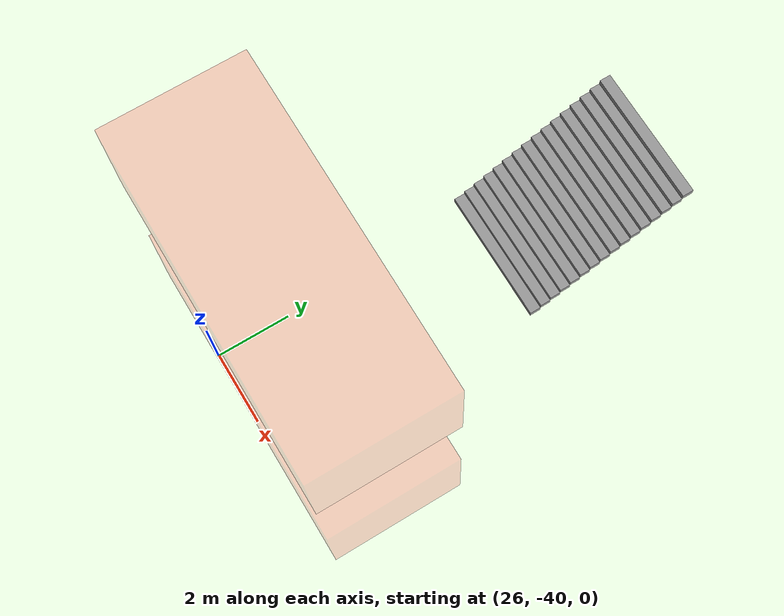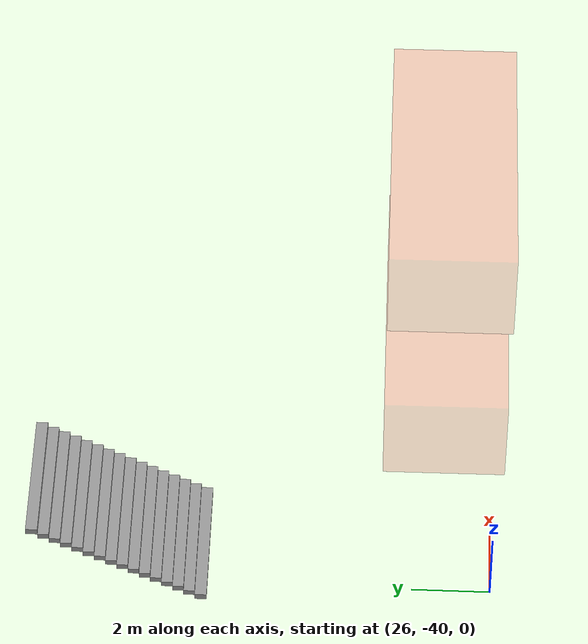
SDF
<sdf version="1.7">
 <world name="world">
  <include><uri>model://sun</uri></include>
  <include>
   <uri>file:///home/home/ros2_ws/src/RCI_quadruped_robot_navigation/rl_sar/models/restricted_zone</uri>
   <name>L2_restricted_zone</name>
   <pose>29.18 -38.66 6.25 0 0 0</pose>
  </include>
  <include>
   <uri>file:///home/home/ros2_ws/src/RCI_quadruped_robot_navigation/rl_sar/models/restricted_zone</uri>
   <name>L3_restricted_zone</name>
   <pose>29.18 -38.66 11.25 0 0 0</pose>
  </include>
  <model name="stairs_new">
   <pose>27.35 -34.334000 0.065 0 -0 1.570796</pose>
   <link name="Stairs">
    <pose>3 1e-06 0 0 -0 0</pose>
    <inertial>
     <mass>1</mass>
     <inertia><ixx>1</ixx><ixy>0</ixy><ixz>0</ixz><iyy>1</iyy><iyz>0</iyz><izz>1</izz></inertia>
    </inertial>
    <visual name="Stairs_Visual_7">
     <pose>0.70875 0 1.09375 0 -0 1.5708</pose>
     <geometry><box><size>3.66 0.28125 0.15625</size></box></geometry>
     <material>
      <script><uri>file://media/materials/scripts/gazebo.material</uri><name>Gazebo/Grey</name></script>
      <ambient>1 1 1 1</ambient>
      <shader type="pixel"><normal_map>__default__</normal_map></shader>
      <diffuse>0.7 0.7 0.7 1</diffuse>
      <specular>0.01 0.01 0.01 1</specular>
      <emissive>0 0 0 1</emissive>
     </material>
     <meta><layer>0</layer></meta>
    </visual>
    <visual name="Stairs_Visual_10">
     <pose>1.5525 0 1.5625 0 -0 1.5708</pose>
     <geometry><box><size>3.66 0.28125 0.15625</size></box></geometry>
     <material>
      <script><uri>file://media/materials/scripts/gazebo.material</uri><name>Gazebo/Grey</name></script>
      <ambient>1 1 1 1</ambient>
      <shader type="pixel"><normal_map>__default__</normal_map></shader>
      <diffuse>0.7 0.7 0.7 1</diffuse>
      <specular>0.01 0.01 0.01 1</specular>
      <emissive>0 0 0 1</emissive>
     </material>
     <meta><layer>0</layer></meta>
    </visual>
    <visual name="Stairs_Visual_11">
     <pose>1.83375 0 1.71875 0 -0 1.5708</pose>
     <geometry><box><size>3.66 0.28125 0.15625</size></box></geometry>
     <material>
      <script><uri>file://media/materials/scripts/gazebo.material</uri><name>Gazebo/Grey</name></script>
      <ambient>1 1 1 1</ambient>
      <shader type="pixel"><normal_map>__default__</normal_map></shader>
      <diffuse>0.7 0.7 0.7 1</diffuse>
      <specular>0.01 0.01 0.01 1</specular>
      <emissive>0 0 0 1</emissive>
     </material>
     <meta><layer>0</layer></meta>
    </visual>
    <visual name="Stairs_Visual_1">
     <pose>-0.97875 0 0.15625 0 -0 1.5708</pose>
     <geometry><box><size>3.66 0.28125 0.15625</size></box></geometry>
     <material>
      <script><uri>file://media/materials/scripts/gazebo.material</uri><name>Gazebo/Grey</name></script>
      <ambient>1 1 1 1</ambient>
      <shader type="pixel"><normal_map>__default__</normal_map></shader>
      <diffuse>0.7 0.7 0.7 1</diffuse>
      <specular>0.01 0.01 0.01 1</specular>
      <emissive>0 0 0 1</emissive>
     </material>
     <meta><layer>0</layer></meta>
    </visual>
    <visual name="Stairs_Visual_8">
     <pose>0.99 0 1.25 0 -0 1.5708</pose>
     <geometry><box><size>3.66 0.28125 0.15625</size></box></geometry>
     <material>
      <script><uri>file://media/materials/scripts/gazebo.material</uri><name>Gazebo/Grey</name></script>
      <ambient>1 1 1 1</ambient>
      <shader type="pixel"><normal_map>__default__</normal_map></shader>
      <diffuse>0.7 0.7 0.7 1</diffuse>
      <specular>0.01 0.01 0.01 1</specular>
      <emissive>0 0 0 1</emissive>
     </material>
     <meta><layer>0</layer></meta>
    </visual>
    <visual name="Stairs_Visual_2">
     <pose>-0.6975 0 0.3125 0 -0 1.5708</pose>
     <geometry><box><size>3.66 0.28125 0.15625</size></box></geometry>
     <material>
      <script><uri>file://media/materials/scripts/gazebo.material</uri><name>Gazebo/Grey</name></script>
      <ambient>1 1 1 1</ambient>
      <shader type="pixel"><normal_map>__default__</normal_map></shader>
      <diffuse>0.7 0.7 0.7 1</diffuse>
      <specular>0.01 0.01 0.01 1</specular>
      <emissive>0 0 0 1</emissive>
     </material>
     <meta><layer>0</layer></meta>
    </visual>
    <visual name="Stairs_Visual_0">
     <pose>-1.27 0 0.005 0 -0 1.5708</pose>
     <geometry><box><size>3.66 0.3 0.17</size></box></geometry>
     <material>
      <script><uri>file://media/materials/scripts/gazebo.material</uri><name>Gazebo/Grey</name></script>
      <ambient>1 1 1 1</ambient>
      <shader type="pixel"><normal_map>__default__</normal_map></shader>
      <diffuse>0.7 0.7 0.7 1</diffuse>
      <specular>0.01 0.01 0.01 1</specular>
      <emissive>0 0 0 1</emissive>
     </material>
     <meta><layer>0</layer></meta>
    </visual>
    <visual name="Stairs_Visual_12">
     <pose>2.115 0 1.875 0 -0 1.5708</pose>
     <geometry><box><size>3.66 0.28125 0.15625</size></box></geometry>
     <material>
      <script><uri>file://media/materials/scripts/gazebo.material</uri><name>Gazebo/Grey</name></script>
      <ambient>1 1 1 1</ambient>
      <shader type="pixel"><normal_map>__default__</normal_map></shader>
      <diffuse>0.7 0.7 0.7 1</diffuse>
      <specular>0.01 0.01 0.01 1</specular>
      <emissive>0 0 0 1</emissive>
     </material>
     <meta><layer>0</layer></meta>
    </visual>
    <visual name="Stairs_Visual_9">
     <pose>1.27125 0 1.40625 0 -0 1.5708</pose>
     <geometry><box><size>3.66 0.28125 0.15625</size></box></geometry>
     <material>
      <script><uri>file://media/materials/scripts/gazebo.material</uri><name>Gazebo/Grey</name></script>
      <ambient>1 1 1 1</ambient>
      <shader type="pixel"><normal_map>__default__</normal_map></shader>
      <diffuse>0.7 0.7 0.7 1</diffuse>
      <specular>0.01 0.01 0.01 1</specular>
      <emissive>0 0 0 1</emissive>
     </material>
     <meta><layer>0</layer></meta>
    </visual>
    <visual name="Stairs_Visual_13">
     <pose>2.39625 0 2.03125 0 -0 1.5708</pose>
     <geometry><box><size>3.66 0.28125 0.15625</size></box></geometry>
     <material>
      <script><uri>file://media/materials/scripts/gazebo.material</uri><name>Gazebo/Grey</name></script>
      <ambient>1 1 1 1</ambient>
      <shader type="pixel"><normal_map>__default__</normal_map></shader>
      <diffuse>0.7 0.7 0.7 1</diffuse>
      <specular>0.01 0.01 0.01 1</specular>
      <emissive>0 0 0 1</emissive>
     </material>
     <meta><layer>0</layer></meta>
    </visual>
    <visual name="Stairs_Visual_4">
     <pose>-0.135 0 0.625 0 -0 1.5708</pose>
     <geometry><box><size>3.66 0.28125 0.15625</size></box></geometry>
     <material>
      <script><uri>file://media/materials/scripts/gazebo.material</uri><name>Gazebo/Grey</name></script>
      <ambient>1 1 1 1</ambient>
      <shader type="pixel"><normal_map>__default__</normal_map></shader>
      <diffuse>0.7 0.7 0.7 1</diffuse>
      <specular>0.01 0.01 0.01 1</specular>
      <emissive>0 0 0 1</emissive>
     </material>
     <meta><layer>0</layer></meta>
    </visual>
    <visual name="Stairs_Visual_5">
     <pose>0.14625 0 0.78125 0 -0 1.5708</pose>
     <geometry><box><size>3.66 0.28125 0.15625</size></box></geometry>
     <material>
      <script><uri>file://media/materials/scripts/gazebo.material</uri><name>Gazebo/Grey</name></script>
      <ambient>1 1 1 1</ambient>
      <shader type="pixel"><normal_map>__default__</normal_map></shader>
      <diffuse>0.7 0.7 0.7 1</diffuse>
      <specular>0.01 0.01 0.01 1</specular>
      <emissive>0 0 0 1</emissive>
     </material>
     <meta><layer>0</layer></meta>
    </visual>
    <visual name="Stairs_Visual_15">
     <pose>2.969 0 2.35 0 -0 1.5708</pose>
     <geometry><box><size>3.66 0.3 0.17</size></box></geometry>
     <material>
      <script><uri>file://media/materials/scripts/gazebo.material</uri><name>Gazebo/Grey</name></script>
      <ambient>1 1 1 1</ambient>
      <shader type="pixel"><normal_map>__default__</normal_map></shader>
      <diffuse>0.7 0.7 0.7 1</diffuse>
      <specular>0.01 0.01 0.01 1</specular>
      <emissive>0 0 0 1</emissive>
     </material>
     <meta><layer>0</layer></meta>
    </visual>
    <visual name="Stairs_Visual_3">
     <pose>-0.41625 0 0.46875 0 -0 1.5708</pose>
     <geometry><box><size>3.66 0.28125 0.15625</size></box></geometry>
     <material>
      <script><uri>file://media/materials/scripts/gazebo.material</uri><name>Gazebo/Grey</name></script>
      <ambient>1 1 1 1</ambient>
      <shader type="pixel"><normal_map>__default__</normal_map></shader>
      <diffuse>0.7 0.7 0.7 1</diffuse>
      <specular>0.01 0.01 0.01 1</specular>
      <emissive>0 0 0 1</emissive>
     </material>
     <meta><layer>0</layer></meta>
    </visual>
    <visual name="Stairs_Visual_6">
     <pose>0.4275 0 0.9375 0 -0 1.5708</pose>
     <geometry><box><size>3.66 0.28125 0.15625</size></box></geometry>
     <material>
      <script><uri>file://media/materials/scripts/gazebo.material</uri><name>Gazebo/Grey</name></script>
      <ambient>1 1 1 1</ambient>
      <shader type="pixel"><normal_map>__default__</normal_map></shader>
      <diffuse>0.7 0.7 0.7 1</diffuse>
      <specular>0.01 0.01 0.01 1</specular>
      <emissive>0 0 0 1</emissive>
     </material>
     <meta><layer>0</layer></meta>
    </visual>
    <visual name="Stairs_Visual_14">
     <pose>2.6775 0 2.1875 0 -0 1.5708</pose>
     <geometry><box><size>3.66 0.28125 0.15625</size></box></geometry>
     <material>
      <script><uri>file://media/materials/scripts/gazebo.material</uri><name>Gazebo/Grey</name></script>
      <ambient>1 1 1 1</ambient>
      <shader type="pixel"><normal_map>__default__</normal_map></shader>
      <diffuse>0.7 0.7 0.7 1</diffuse>
      <specular>0.01 0.01 0.01 1</specular>
      <emissive>0 0 0 1</emissive>
     </material>
     <meta><layer>0</layer></meta>
    </visual>
    <collision name="Stairs_Collision_9">
     <pose>1.27125 0 1.40625 0 -0 1.5708</pose>
     <geometry><box><size>3.66 0.28125 0.15625</size></box></geometry>
     <surface>
      <friction>
       <ode><mu>1</mu><mu2>1</mu2><fdir1>0 0 0</fdir1><slip1>0</slip1><slip2>0</slip2></ode>
       <torsional>
        <coefficient>1</coefficient>
        <patch_radius>0</patch_radius>
        <surface_radius>0</surface_radius>
        <use_patch_radius>1</use_patch_radius>
        <ode><slip>0</slip></ode>
       </torsional>
      </friction>
      <bounce><restitution_coefficient>0</restitution_coefficient><threshold>1e+06</threshold></bounce>
      <contact>
       <collide_without_contact>0</collide_without_contact>
       <collide_without_contact_bitmask>1</collide_without_contact_bitmask>
       <collide_bitmask>1</collide_bitmask>
       <ode>
        <soft_cfm>0</soft_cfm>
        <soft_erp>0.2</soft_erp>
        <kp>1e+13</kp>
        <kd>1</kd>
        <max_vel>0.01</max_vel>
        <min_depth>0</min_depth>
       </ode>
       <bullet>
        <split_impulse>1</split_impulse>
        <split_impulse_penetration_threshold>-0.01</split_impulse_penetration_threshold>
        <soft_cfm>0</soft_cfm>
        <soft_erp>0.2</soft_erp>
        <kp>1e+13</kp>
        <kd>1</kd>
       </bullet>
      </contact>
     </surface>
    </collision>
    <collision name="Stairs_Collision_1">
     <pose>-0.97875 0 0.15625 0 -0 1.5708</pose>
     <geometry><box><size>3.66 0.3 0.1566</size></box></geometry>
     <surface>
      <friction>
       <ode><mu>1</mu><mu2>1</mu2><fdir1>0 0 0</fdir1><slip1>0</slip1><slip2>0</slip2></ode>
       <torsional>
        <coefficient>1</coefficient>
        <patch_radius>0</patch_radius>
        <surface_radius>0</surface_radius>
        <use_patch_radius>1</use_patch_radius>
        <ode><slip>0</slip></ode>
       </torsional>
      </friction>
      <bounce><restitution_coefficient>0</restitution_coefficient><threshold>1e+06</threshold></bounce>
      <contact>
       <collide_without_contact>0</collide_without_contact>
       <collide_without_contact_bitmask>1</collide_without_contact_bitmask>
       <collide_bitmask>1</collide_bitmask>
       <ode>
        <soft_cfm>0</soft_cfm>
        <soft_erp>0.2</soft_erp>
        <kp>1e+13</kp>
        <kd>1</kd>
        <max_vel>0.01</max_vel>
        <min_depth>0</min_depth>
       </ode>
       <bullet>
        <split_impulse>1</split_impulse>
        <split_impulse_penetration_threshold>-0.01</split_impulse_penetration_threshold>
        <soft_cfm>0</soft_cfm>
        <soft_erp>0.2</soft_erp>
        <kp>1e+13</kp>
        <kd>1</kd>
       </bullet>
      </contact>
     </surface>
    </collision>
    <collision name="Stairs_Collision_6">
     <pose>0.4275 0 0.9375 0 -0 1.5708</pose>
     <geometry><box><size>3.66 0.28125 0.15625</size></box></geometry>
     <surface>
      <friction>
       <ode><mu>1</mu><mu2>1</mu2><fdir1>0 0 0</fdir1><slip1>0</slip1><slip2>0</slip2></ode>
       <torsional>
        <coefficient>1</coefficient>
        <patch_radius>0</patch_radius>
        <surface_radius>0</surface_radius>
        <use_patch_radius>1</use_patch_radius>
        <ode><slip>0</slip></ode>
       </torsional>
      </friction>
      <bounce><restitution_coefficient>0</restitution_coefficient><threshold>1e+06</threshold></bounce>
      <contact>
       <collide_without_contact>0</collide_without_contact>
       <collide_without_contact_bitmask>1</collide_without_contact_bitmask>
       <collide_bitmask>1</collide_bitmask>
       <ode>
        <soft_cfm>0</soft_cfm>
        <soft_erp>0.2</soft_erp>
        <kp>1e+13</kp>
        <kd>1</kd>
        <max_vel>0.01</max_vel>
        <min_depth>0</min_depth>
       </ode>
       <bullet>
        <split_impulse>1</split_impulse>
        <split_impulse_penetration_threshold>-0.01</split_impulse_penetration_threshold>
        <soft_cfm>0</soft_cfm>
        <soft_erp>0.2</soft_erp>
        <kp>1e+13</kp>
        <kd>1</kd>
       </bullet>
      </contact>
     </surface>
    </collision>
    <collision name="Stairs_Collision_7">
     <pose>0.70875 0 1.09375 0 -0 1.5708</pose>
     <geometry><box><size>3.66 0.28125 0.15625</size></box></geometry>
     <surface>
      <friction>
       <ode><mu>1</mu><mu2>1</mu2><fdir1>0 0 0</fdir1><slip1>0</slip1><slip2>0</slip2></ode>
       <torsional>
        <coefficient>1</coefficient>
        <patch_radius>0</patch_radius>
        <surface_radius>0</surface_radius>
        <use_patch_radius>1</use_patch_radius>
        <ode><slip>0</slip></ode>
       </torsional>
      </friction>
      <bounce><restitution_coefficient>0</restitution_coefficient><threshold>1e+06</threshold></bounce>
      <contact>
       <collide_without_contact>0</collide_without_contact>
       <collide_without_contact_bitmask>1</collide_without_contact_bitmask>
       <collide_bitmask>1</collide_bitmask>
       <ode>
        <soft_cfm>0</soft_cfm>
        <soft_erp>0.2</soft_erp>
        <kp>1e+13</kp>
        <kd>1</kd>
        <max_vel>0.01</max_vel>
        <min_depth>0</min_depth>
       </ode>
       <bullet>
        <split_impulse>1</split_impulse>
        <split_impulse_penetration_threshold>-0.01</split_impulse_penetration_threshold>
        <soft_cfm>0</soft_cfm>
        <soft_erp>0.2</soft_erp>
        <kp>1e+13</kp>
        <kd>1</kd>
       </bullet>
      </contact>
     </surface>
    </collision>
    <collision name="Stairs_Collision_5">
     <pose>0.14625 0 0.78125 0 -0 1.5708</pose>
     <geometry><box><size>3.66 0.28125 0.15625</size></box></geometry>
     <surface>
      <friction>
       <ode><mu>1</mu><mu2>1</mu2><fdir1>0 0 0</fdir1><slip1>0</slip1><slip2>0</slip2></ode>
       <torsional>
        <coefficient>1</coefficient>
        <patch_radius>0</patch_radius>
        <surface_radius>0</surface_radius>
        <use_patch_radius>1</use_patch_radius>
        <ode><slip>0</slip></ode>
       </torsional>
      </friction>
      <bounce><restitution_coefficient>0</restitution_coefficient><threshold>1e+06</threshold></bounce>
      <contact>
       <collide_without_contact>0</collide_without_contact>
       <collide_without_contact_bitmask>1</collide_without_contact_bitmask>
       <collide_bitmask>1</collide_bitmask>
       <ode>
        <soft_cfm>0</soft_cfm>
        <soft_erp>0.2</soft_erp>
        <kp>1e+13</kp>
        <kd>1</kd>
        <max_vel>0.01</max_vel>
        <min_depth>0</min_depth>
       </ode>
       <bullet>
        <split_impulse>1</split_impulse>
        <split_impulse_penetration_threshold>-0.01</split_impulse_penetration_threshold>
        <soft_cfm>0</soft_cfm>
        <soft_erp>0.2</soft_erp>
        <kp>1e+13</kp>
        <kd>1</kd>
       </bullet>
      </contact>
     </surface>
    </collision>
    <collision name="Stairs_Collision_10">
     <pose>1.5525 0 1.5625 0 -0 1.5708</pose>
     <geometry><box><size>3.66 0.28125 0.15625</size></box></geometry>
     <surface>
      <friction>
       <ode><mu>1</mu><mu2>1</mu2><fdir1>0 0 0</fdir1><slip1>0</slip1><slip2>0</slip2></ode>
       <torsional>
        <coefficient>1</coefficient>
        <patch_radius>0</patch_radius>
        <surface_radius>0</surface_radius>
        <use_patch_radius>1</use_patch_radius>
        <ode><slip>0</slip></ode>
       </torsional>
      </friction>
      <bounce><restitution_coefficient>0</restitution_coefficient><threshold>1e+06</threshold></bounce>
      <contact>
       <collide_without_contact>0</collide_without_contact>
       <collide_without_contact_bitmask>1</collide_without_contact_bitmask>
       <collide_bitmask>1</collide_bitmask>
       <ode>
        <soft_cfm>0</soft_cfm>
        <soft_erp>0.2</soft_erp>
        <kp>1e+13</kp>
        <kd>1</kd>
        <max_vel>0.01</max_vel>
        <min_depth>0</min_depth>
       </ode>
       <bullet>
        <split_impulse>1</split_impulse>
        <split_impulse_penetration_threshold>-0.01</split_impulse_penetration_threshold>
        <soft_cfm>0</soft_cfm>
        <soft_erp>0.2</soft_erp>
        <kp>1e+13</kp>
        <kd>1</kd>
       </bullet>
      </contact>
     </surface>
    </collision>
    <collision name="Stairs_Collision_2">
     <pose>-0.6975 0 0.3125 0 -0 1.5708</pose>
     <geometry><box><size>3.66 0.28125 0.15625</size></box></geometry>
     <surface>
      <friction>
       <ode><mu>1</mu><mu2>1</mu2><fdir1>0 0 0</fdir1><slip1>0</slip1><slip2>0</slip2></ode>
       <torsional>
        <coefficient>1</coefficient>
        <patch_radius>0</patch_radius>
        <surface_radius>0</surface_radius>
        <use_patch_radius>1</use_patch_radius>
        <ode><slip>0</slip></ode>
       </torsional>
      </friction>
      <bounce><restitution_coefficient>0</restitution_coefficient><threshold>1e+06</threshold></bounce>
      <contact>
       <collide_without_contact>0</collide_without_contact>
       <collide_without_contact_bitmask>1</collide_without_contact_bitmask>
       <collide_bitmask>1</collide_bitmask>
       <ode>
        <soft_cfm>0</soft_cfm>
        <soft_erp>0.2</soft_erp>
        <kp>1e+13</kp>
        <kd>1</kd>
        <max_vel>0.01</max_vel>
        <min_depth>0</min_depth>
       </ode>
       <bullet>
        <split_impulse>1</split_impulse>
        <split_impulse_penetration_threshold>-0.01</split_impulse_penetration_threshold>
        <soft_cfm>0</soft_cfm>
        <soft_erp>0.2</soft_erp>
        <kp>1e+13</kp>
        <kd>1</kd>
       </bullet>
      </contact>
     </surface>
    </collision>
    <collision name="Stairs_Collision_8">
     <pose>0.99 0 1.25 0 -0 1.5708</pose>
     <geometry><box><size>3.66 0.28125 0.15625</size></box></geometry>
     <surface>
      <friction>
       <ode><mu>1</mu><mu2>1</mu2><fdir1>0 0 0</fdir1><slip1>0</slip1><slip2>0</slip2></ode>
       <torsional>
        <coefficient>1</coefficient>
        <patch_radius>0</patch_radius>
        <surface_radius>0</surface_radius>
        <use_patch_radius>1</use_patch_radius>
        <ode><slip>0</slip></ode>
       </torsional>
      </friction>
      <bounce><restitution_coefficient>0</restitution_coefficient><threshold>1e+06</threshold></bounce>
      <contact>
       <collide_without_contact>0</collide_without_contact>
       <collide_without_contact_bitmask>1</collide_without_contact_bitmask>
       <collide_bitmask>1</collide_bitmask>
       <ode>
        <soft_cfm>0</soft_cfm>
        <soft_erp>0.2</soft_erp>
        <kp>1e+13</kp>
        <kd>1</kd>
        <max_vel>0.01</max_vel>
        <min_depth>0</min_depth>
       </ode>
       <bullet>
        <split_impulse>1</split_impulse>
        <split_impulse_penetration_threshold>-0.01</split_impulse_penetration_threshold>
        <soft_cfm>0</soft_cfm>
        <soft_erp>0.2</soft_erp>
        <kp>1e+13</kp>
        <kd>1</kd>
       </bullet>
      </contact>
     </surface>
    </collision>
    <collision name="Stairs_Collision_4">
     <pose>-0.135 0 0.625 0 -0 1.5708</pose>
     <geometry><box><size>3.66 0.30125 0.15625</size></box></geometry>
     <surface>
      <friction>
       <ode><mu>1</mu><mu2>1</mu2><fdir1>0 0 0</fdir1><slip1>0</slip1><slip2>0</slip2></ode>
       <torsional>
        <coefficient>1</coefficient>
        <patch_radius>0</patch_radius>
        <surface_radius>0</surface_radius>
        <use_patch_radius>1</use_patch_radius>
        <ode><slip>0</slip></ode>
       </torsional>
      </friction>
      <bounce><restitution_coefficient>0</restitution_coefficient><threshold>1e+06</threshold></bounce>
      <contact>
       <collide_without_contact>0</collide_without_contact>
       <collide_without_contact_bitmask>1</collide_without_contact_bitmask>
       <collide_bitmask>1</collide_bitmask>
       <ode>
        <soft_cfm>0</soft_cfm>
        <soft_erp>0.2</soft_erp>
        <kp>1e+13</kp>
        <kd>1</kd>
        <max_vel>0.01</max_vel>
        <min_depth>0</min_depth>
       </ode>
       <bullet>
        <split_impulse>1</split_impulse>
        <split_impulse_penetration_threshold>-0.01</split_impulse_penetration_threshold>
        <soft_cfm>0</soft_cfm>
        <soft_erp>0.2</soft_erp>
        <kp>1e+13</kp>
        <kd>1</kd>
       </bullet>
      </contact>
     </surface>
    </collision>
    <collision name="Stairs_Collision_13">
     <pose>2.39625 0 2.03125 0 -0 1.5708</pose>
     <geometry><box><size>3.66 0.28125 0.15625</size></box></geometry>
     <surface>
      <friction>
       <ode><mu>1</mu><mu2>1</mu2><fdir1>0 0 0</fdir1><slip1>0</slip1><slip2>0</slip2></ode>
       <torsional>
        <coefficient>1</coefficient>
        <patch_radius>0</patch_radius>
        <surface_radius>0</surface_radius>
        <use_patch_radius>1</use_patch_radius>
        <ode><slip>0</slip></ode>
       </torsional>
      </friction>
      <bounce><restitution_coefficient>0</restitution_coefficient><threshold>1e+06</threshold></bounce>
      <contact>
       <collide_without_contact>0</collide_without_contact>
       <collide_without_contact_bitmask>1</collide_without_contact_bitmask>
       <collide_bitmask>1</collide_bitmask>
       <ode>
        <soft_cfm>0</soft_cfm>
        <soft_erp>0.2</soft_erp>
        <kp>1e+13</kp>
        <kd>1</kd>
        <max_vel>0.01</max_vel>
        <min_depth>0</min_depth>
       </ode>
       <bullet>
        <split_impulse>1</split_impulse>
        <split_impulse_penetration_threshold>-0.01</split_impulse_penetration_threshold>
        <soft_cfm>0</soft_cfm>
        <soft_erp>0.2</soft_erp>
        <kp>1e+13</kp>
        <kd>1</kd>
       </bullet>
      </contact>
     </surface>
    </collision>
    <collision name="Stairs_Collision_11">
     <pose>1.83375 0 1.71875 0 -0 1.5708</pose>
     <geometry><box><size>3.66 0.28125 0.15625</size></box></geometry>
     <surface>
      <friction>
       <ode><mu>1</mu><mu2>1</mu2><fdir1>0 0 0</fdir1><slip1>0</slip1><slip2>0</slip2></ode>
       <torsional>
        <coefficient>1</coefficient>
        <patch_radius>0</patch_radius>
        <surface_radius>0</surface_radius>
        <use_patch_radius>1</use_patch_radius>
        <ode><slip>0</slip></ode>
       </torsional>
      </friction>
      <bounce><restitution_coefficient>0</restitution_coefficient><threshold>1e+06</threshold></bounce>
      <contact>
       <collide_without_contact>0</collide_without_contact>
       <collide_without_contact_bitmask>1</collide_without_contact_bitmask>
       <collide_bitmask>1</collide_bitmask>
       <ode>
        <soft_cfm>0</soft_cfm>
        <soft_erp>0.2</soft_erp>
        <kp>1e+13</kp>
        <kd>1</kd>
        <max_vel>0.01</max_vel>
        <min_depth>0</min_depth>
       </ode>
       <bullet>
        <split_impulse>1</split_impulse>
        <split_impulse_penetration_threshold>-0.01</split_impulse_penetration_threshold>
        <soft_cfm>0</soft_cfm>
        <soft_erp>0.2</soft_erp>
        <kp>1e+13</kp>
        <kd>1</kd>
       </bullet>
      </contact>
     </surface>
    </collision>
    <collision name="Stairs_Collision_0">
     <pose>-1.27 0 -0.005 0 -0 1.5708</pose>
     <geometry><box><size>3.66 0.3 0.2</size></box></geometry>
     <surface>
      <friction>
       <ode><mu>1</mu><mu2>1</mu2><fdir1>0 0 0</fdir1><slip1>0</slip1><slip2>0</slip2></ode>
       <torsional>
        <coefficient>1</coefficient>
        <patch_radius>0</patch_radius>
        <surface_radius>0</surface_radius>
        <use_patch_radius>1</use_patch_radius>
        <ode><slip>0</slip></ode>
       </torsional>
      </friction>
      <bounce><restitution_coefficient>0</restitution_coefficient><threshold>1e+06</threshold></bounce>
      <contact>
       <collide_without_contact>0</collide_without_contact>
       <collide_without_contact_bitmask>1</collide_without_contact_bitmask>
       <collide_bitmask>1</collide_bitmask>
       <ode>
        <soft_cfm>0</soft_cfm>
        <soft_erp>0.2</soft_erp>
        <kp>1e+13</kp>
        <kd>1</kd>
        <max_vel>0.01</max_vel>
        <min_depth>0</min_depth>
       </ode>
       <bullet>
        <split_impulse>1</split_impulse>
        <split_impulse_penetration_threshold>-0.01</split_impulse_penetration_threshold>
        <soft_cfm>0</soft_cfm>
        <soft_erp>0.2</soft_erp>
        <kp>1e+13</kp>
        <kd>1</kd>
       </bullet>
      </contact>
     </surface>
    </collision>
    <collision name="Stairs_Collision_3">
     <pose>-0.41625 0 0.46875 0 -0 1.5708</pose>
     <geometry><box><size>3.66 0.28125 0.15625</size></box></geometry>
     <surface>
      <friction>
       <ode><mu>1</mu><mu2>1</mu2><fdir1>0 0 0</fdir1><slip1>0</slip1><slip2>0</slip2></ode>
       <torsional>
        <coefficient>1</coefficient>
        <patch_radius>0</patch_radius>
        <surface_radius>0</surface_radius>
        <use_patch_radius>1</use_patch_radius>
        <ode><slip>0</slip></ode>
       </torsional>
      </friction>
      <bounce><restitution_coefficient>0</restitution_coefficient><threshold>1e+06</threshold></bounce>
      <contact>
       <collide_without_contact>0</collide_without_contact>
       <collide_without_contact_bitmask>1</collide_without_contact_bitmask>
       <collide_bitmask>1</collide_bitmask>
       <ode>
        <soft_cfm>0</soft_cfm>
        <soft_erp>0.2</soft_erp>
        <kp>1e+13</kp>
        <kd>1</kd>
        <max_vel>0.01</max_vel>
        <min_depth>0</min_depth>
       </ode>
       <bullet>
        <split_impulse>1</split_impulse>
        <split_impulse_penetration_threshold>-0.01</split_impulse_penetration_threshold>
        <soft_cfm>0</soft_cfm>
        <soft_erp>0.2</soft_erp>
        <kp>1e+13</kp>
        <kd>1</kd>
       </bullet>
      </contact>
     </surface>
    </collision>
    <collision name="Stairs_Collision_12">
     <pose>2.115 0 1.875 0 -0 1.5708</pose>
     <geometry><box><size>3.66 0.28125 0.15625</size></box></geometry>
     <surface>
      <friction>
       <ode><mu>1</mu><mu2>1</mu2><fdir1>0 0 0</fdir1><slip1>0</slip1><slip2>0</slip2></ode>
       <torsional>
        <coefficient>1</coefficient>
        <patch_radius>0</patch_radius>
        <surface_radius>0</surface_radius>
        <use_patch_radius>1</use_patch_radius>
        <ode><slip>0</slip></ode>
       </torsional>
      </friction>
      <bounce><restitution_coefficient>0</restitution_coefficient><threshold>1e+06</threshold></bounce>
      <contact>
       <collide_without_contact>0</collide_without_contact>
       <collide_without_contact_bitmask>1</collide_without_contact_bitmask>
       <collide_bitmask>1</collide_bitmask>
       <ode>
        <soft_cfm>0</soft_cfm>
        <soft_erp>0.2</soft_erp>
        <kp>1e+13</kp>
        <kd>1</kd>
        <max_vel>0.01</max_vel>
        <min_depth>0</min_depth>
       </ode>
       <bullet>
        <split_impulse>1</split_impulse>
        <split_impulse_penetration_threshold>-0.01</split_impulse_penetration_threshold>
        <soft_cfm>0</soft_cfm>
        <soft_erp>0.2</soft_erp>
        <kp>1e+13</kp>
        <kd>1</kd>
       </bullet>
      </contact>
     </surface>
    </collision>
    <collision name="Stairs_Collision_14">
     <pose>2.6775 0 2.1875 0 -0 1.5708</pose>
     <geometry><box><size>3.66 0.28125 0.15625</size></box></geometry>
     <surface>
      <friction>
       <ode><mu>1</mu><mu2>1</mu2><fdir1>0 0 0</fdir1><slip1>0</slip1><slip2>0</slip2></ode>
       <torsional>
        <coefficient>1</coefficient>
        <patch_radius>0</patch_radius>
        <surface_radius>0</surface_radius>
        <use_patch_radius>1</use_patch_radius>
        <ode><slip>0</slip></ode>
       </torsional>
      </friction>
      <bounce><restitution_coefficient>0</restitution_coefficient><threshold>1e+06</threshold></bounce>
      <contact>
       <collide_without_contact>0</collide_without_contact>
       <collide_without_contact_bitmask>1</collide_without_contact_bitmask>
       <collide_bitmask>1</collide_bitmask>
       <ode>
        <soft_cfm>0</soft_cfm>
        <soft_erp>0.2</soft_erp>
        <kp>1e+13</kp>
        <kd>1</kd>
        <max_vel>0.01</max_vel>
        <min_depth>0</min_depth>
       </ode>
       <bullet>
        <split_impulse>1</split_impulse>
        <split_impulse_penetration_threshold>-0.01</split_impulse_penetration_threshold>
        <soft_cfm>0</soft_cfm>
        <soft_erp>0.2</soft_erp>
        <kp>1e+13</kp>
        <kd>1</kd>
       </bullet>
      </contact>
     </surface>
    </collision>
    <collision name="Stairs_Collision_15">
     <pose>2.969 0 2.35 0 -0 1.5708</pose>
     <geometry><box><size>3.66 0.3 0.17</size></box></geometry>
     <surface>
      <friction>
       <ode><mu>1</mu><mu2>1</mu2><fdir1>0 0 0</fdir1><slip1>0</slip1><slip2>0</slip2></ode>
       <torsional>
        <coefficient>1</coefficient>
        <patch_radius>0</patch_radius>
        <surface_radius>0</surface_radius>
        <use_patch_radius>1</use_patch_radius>
        <ode><slip>0</slip></ode>
       </torsional>
      </friction>
      <bounce><restitution_coefficient>0</restitution_coefficient><threshold>1e+06</threshold></bounce>
      <contact>
       <collide_without_contact>0</collide_without_contact>
       <collide_without_contact_bitmask>1</collide_without_contact_bitmask>
       <collide_bitmask>1</collide_bitmask>
       <ode>
        <soft_cfm>0</soft_cfm>
        <soft_erp>0.2</soft_erp>
        <kp>1e+13</kp>
        <kd>1</kd>
        <max_vel>0.01</max_vel>
        <min_depth>0</min_depth>
       </ode>
       <bullet>
        <split_impulse>1</split_impulse>
        <split_impulse_penetration_threshold>-0.01</split_impulse_penetration_threshold>
        <soft_cfm>0</soft_cfm>
        <soft_erp>0.2</soft_erp>
        <kp>1e+13</kp>
        <kd>1</kd>
       </bullet>
      </contact>
     </surface>
    </collision>
    <scale>1 1 1</scale>
   </link>
   <static>1</static>
   <pose>18.9268 -32.7858 0 0 -0 0</pose>
  </model>
 </world>
</sdf>
